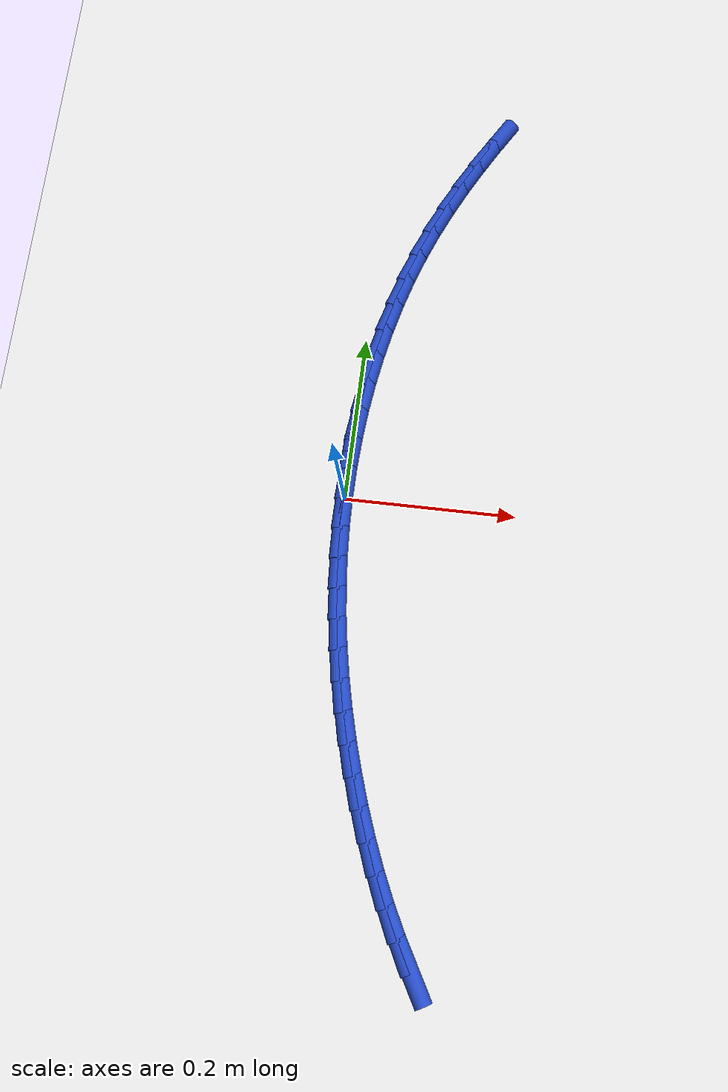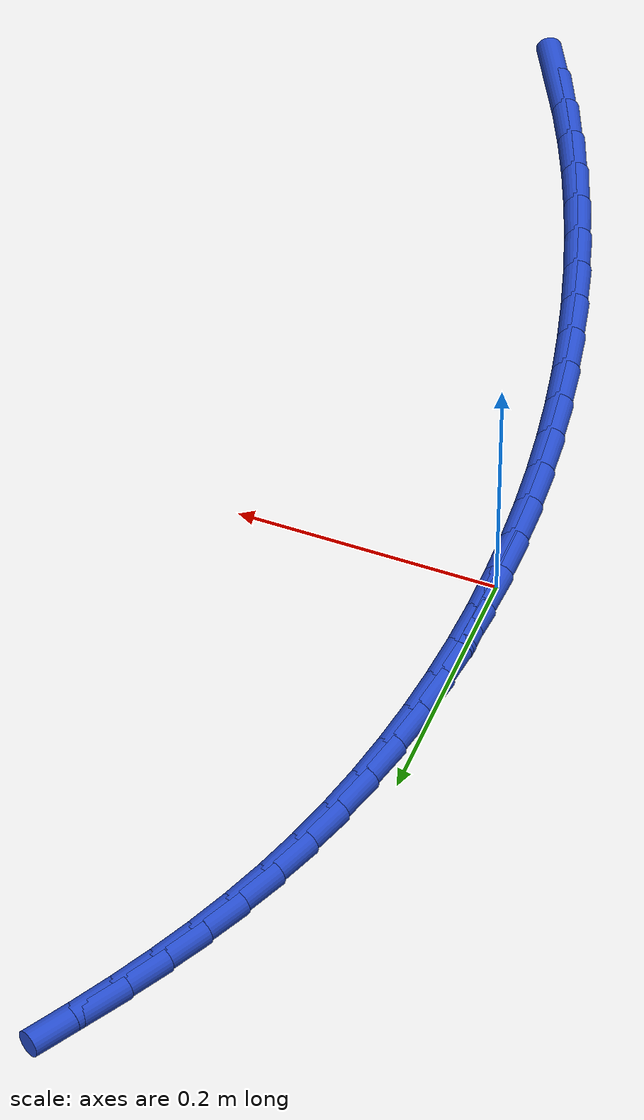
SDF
<sdf version="1.6">
 <world name="default">
  <model name="ground_plane">
   <static>1</static>
   <link name="link">
    <collision name="collision">
     <geometry><plane><normal>0 0 1</normal><size>100 100</size></plane></geometry>
     <surface><friction><ode><mu>100</mu><mu2>50</mu2></ode></friction></surface>
    </collision>
    <visual name="visual">
     <cast_shadows>0</cast_shadows>
     <geometry><plane><normal>0 0 1</normal><size>100 100</size></plane></geometry>
     <material>
      <script><uri>file://media/materials/scripts/gazebo.material</uri><name>Gazebo/WhiteGlow</name></script>
     </material>
    </visual>
   </link>
  </model>
  <model name="line">
   <link name="link_0">
    <pose>8.673617379884035e-19 -6.938893903907228e-18 0.01 0 1.57 1.560804196226512</pose>
    <collision name="collision">
     <geometry><cylinder><radius>0.01</radius><length>0.08</length></cylinder></geometry>
    </collision>
    <visual name="visual">
     <material>
      <script><name>Gazebo/Blue</name><uri>file://media/materials/scripts/gazebo.material</uri></script>
     </material>
     <geometry><cylinder><radius>0.01</radius><length>0.08</length></cylinder></geometry>
    </visual>
   </link>
   <link name="link_1">
    <pose>0.00035642979521674603 0.03566986343876464 0.01 0 1.57 1.5253975953398975</pose>
    <collision name="collision">
     <geometry><cylinder><radius>0.01</radius><length>0.08</length></cylinder></geometry>
    </collision>
    <visual name="visual">
     <material>
      <script><name>Gazebo/Blue</name><uri>file://media/materials/scripts/gazebo.material</uri></script>
     </material>
     <geometry><cylinder><radius>0.01</radius><length>0.08</length></cylinder></geometry>
    </visual>
   </link>
   <link name="link_2">
    <pose>0.0019789209129767306 0.07138399546337049 0.01 0 1.57 1.4893793077935327</pose>
    <collision name="collision">
     <geometry><cylinder><radius>0.01</radius><length>0.08</length></cylinder></geometry>
    </collision>
    <visual name="visual">
     <material>
      <script><name>Gazebo/Blue</name><uri>file://media/materials/scripts/gazebo.material</uri></script>
     </material>
     <geometry><cylinder><radius>0.01</radius><length>0.08</length></cylinder></geometry>
    </visual>
   </link>
   <link name="link_3">
    <pose>0.004889206295829885 0.10705039636222353 0.01 0 1.57 1.4525715119699916</pose>
    <collision name="collision">
     <geometry><cylinder><radius>0.01</radius><length>0.08</length></cylinder></geometry>
    </collision>
    <visual name="visual">
     <material>
      <script><name>Gazebo/Blue</name><uri>file://media/materials/scripts/gazebo.material</uri></script>
     </material>
     <geometry><cylinder><radius>0.01</radius><length>0.08</length></cylinder></geometry>
    </visual>
   </link>
   <link name="link_4">
    <pose>0.00910901888632615 0.14257706642372994 0.01 0 1.57 1.4147974794986888</pose>
    <collision name="collision">
     <geometry><cylinder><radius>0.01</radius><length>0.08</length></cylinder></geometry>
    </collision>
    <visual name="visual">
     <material>
      <script><name>Gazebo/Blue</name><uri>file://media/materials/scripts/gazebo.material</uri></script>
     </material>
     <geometry><cylinder><radius>0.01</radius><length>0.08</length></cylinder></geometry>
    </visual>
   </link>
   <link name="link_5">
    <pose>0.014660091627015443 0.17787200593629557 0.01 0 1.57 1.3758813945967248</pose>
    <collision name="collision">
     <geometry><cylinder><radius>0.01</radius><length>0.08</length></cylinder></geometry>
    </collision>
    <visual name="visual">
     <material>
      <script><name>Gazebo/Blue</name><uri>file://media/materials/scripts/gazebo.material</uri></script>
     </material>
     <geometry><cylinder><radius>0.01</radius><length>0.08</length></cylinder></geometry>
    </visual>
   </link>
   <link name="link_6">
    <pose>0.02156415746044771 0.21284321518832658 0.01 0 1.57 1.3356487792455822</pose>
    <collision name="collision">
     <geometry><cylinder><radius>0.01</radius><length>0.08</length></cylinder></geometry>
    </collision>
    <visual name="visual">
     <material>
      <script><name>Gazebo/Blue</name><uri>file://media/materials/scripts/gazebo.material</uri></script>
     </material>
     <geometry><cylinder><radius>0.01</radius><length>0.08</length></cylinder></geometry>
    </visual>
   </link>
   <link name="link_7">
    <pose>0.02984294932917287 0.24739869446822899 0.01 0 1.57 1.2939276528066</pose>
    <collision name="collision">
     <geometry><cylinder><radius>0.01</radius><length>0.08</length></cylinder></geometry>
    </collision>
    <visual name="visual">
     <material>
      <script><name>Gazebo/Blue</name><uri>file://media/materials/scripts/gazebo.material</uri></script>
     </material>
     <geometry><cylinder><radius>0.01</radius><length>0.08</length></cylinder></geometry>
    </visual>
   </link>
   <link name="link_8">
    <pose>0.03951820017574087 0.2814464440644088 0.01 0 1.57 1.250550577946964</pose>
    <collision name="collision">
     <geometry><cylinder><radius>0.01</radius><length>0.08</length></cylinder></geometry>
    </collision>
    <visual name="visual">
     <material>
      <script><name>Gazebo/Blue</name><uri>file://media/materials/scripts/gazebo.material</uri></script>
     </material>
     <geometry><cylinder><radius>0.01</radius><length>0.08</length></cylinder></geometry>
    </visual>
   </link>
   <link name="link_9">
    <pose>0.05061164294270161 0.3148944642652719 0.01 0 1.57 1.2056868077154406</pose>
    <collision name="collision">
     <geometry><cylinder><radius>0.01</radius><length>0.08</length></cylinder></geometry>
    </collision>
    <visual name="visual">
     <material>
      <script><name>Gazebo/Blue</name><uri>file://media/materials/scripts/gazebo.material</uri></script>
     </material>
     <geometry><cylinder><radius>0.01</radius><length>0.08</length></cylinder></geometry>
    </visual>
   </link>
   <link name="link_10">
    <pose>0.06313663496150317 0.3476611653647751 0.01 0 1.57 1.1626769627157991</pose>
    <collision name="collision">
     <geometry><cylinder><radius>0.01</radius><length>0.08</length></cylinder></geometry>
    </collision>
    <visual name="visual">
     <material>
      <script><name>Gazebo/Blue</name><uri>file://media/materials/scripts/gazebo.material</uri></script>
     </material>
     <geometry><cylinder><radius>0.01</radius><length>0.08</length></cylinder></geometry>
    </visual>
   </link>
   <link name="link_11">
    <pose>0.07702096798013851 0.3797713066967087 0.01 0 1.57 1.1237424071856092</pose>
    <collision name="collision">
     <geometry><cylinder><radius>0.01</radius><length>0.08</length></cylinder></geometry>
    </collision>
    <visual name="visual">
     <material>
      <script><name>Gazebo/Blue</name><uri>file://media/materials/scripts/gazebo.material</uri></script>
     </material>
     <geometry><cylinder><radius>0.01</radius><length>0.08</length></cylinder></geometry>
    </visual>
   </link>
   <link name="link_12">
    <pose>0.09214236167289439 0.4113118819272449 0.01 0 1.57 1.089125896518633</pose>
    <collision name="collision">
     <geometry><cylinder><radius>0.01</radius><length>0.08</length></cylinder></geometry>
    </collision>
    <visual name="visual">
     <material>
      <script><name>Gazebo/Blue</name><uri>file://media/materials/scripts/gazebo.material</uri></script>
     </material>
     <geometry><cylinder><radius>0.01</radius><length>0.08</length></cylinder></geometry>
    </visual>
   </link>
   <link name="link_13">
    <pose>0.1083779041406727 0.4423706697019865 0.01 0 1.57 1.0589559659315158</pose>
    <collision name="collision">
     <geometry><cylinder><radius>0.01</radius><length>0.08</length></cylinder></geometry>
    </collision>
    <visual name="visual">
     <material>
      <script><name>Gazebo/Blue</name><uri>file://media/materials/scripts/gazebo.material</uri></script>
     </material>
     <geometry><cylinder><radius>0.01</radius><length>0.08</length></cylinder></geometry>
    </visual>
   </link>
   <link name="link_14">
    <pose>0.1256046834843754 0.4730354486665372 0.01 0 1.57 1.0332889420093587</pose>
    <collision name="collision">
     <geometry><cylinder><radius>0.01</radius><length>0.08</length></cylinder></geometry>
    </collision>
    <visual name="visual">
     <material>
      <script><name>Gazebo/Blue</name><uri>file://media/materials/scripts/gazebo.material</uri></script>
     </material>
     <geometry><cylinder><radius>0.01</radius><length>0.08</length></cylinder></geometry>
    </visual>
   </link>
   <link name="link_175">
    <pose>0.13695451609697823 -0.5119933351743617 0.01 0 1.57 -1.0609991235440372</pose>
    <collision name="collision">
     <geometry><cylinder><radius>0.01</radius><length>0.08</length></cylinder></geometry>
    </collision>
    <visual name="visual">
     <material>
      <script><name>Gazebo/Blue</name><uri>file://media/materials/scripts/gazebo.material</uri></script>
     </material>
     <geometry><cylinder><radius>0.01</radius><length>0.08</length></cylinder></geometry>
    </visual>
   </link>
   <link name="link_176">
    <pose>0.1195264746472616 -0.48082131708357434 0.01 0 1.57 -1.1045988890465037</pose>
    <collision name="collision">
     <geometry><cylinder><radius>0.01</radius><length>0.08</length></cylinder></geometry>
    </collision>
    <visual name="visual">
     <material>
      <script><name>Gazebo/Blue</name><uri>file://media/materials/scripts/gazebo.material</uri></script>
     </material>
     <geometry><cylinder><radius>0.01</radius><length>0.08</length></cylinder></geometry>
    </visual>
   </link>
   <link name="link_177">
    <pose>0.10338782227650756 -0.44874872283114814 0.01 0 1.57 -1.144870376235784</pose>
    <collision name="collision">
     <geometry><cylinder><radius>0.01</radius><length>0.08</length></cylinder></geometry>
    </collision>
    <visual name="visual">
     <material>
      <script><name>Gazebo/Blue</name><uri>file://media/materials/scripts/gazebo.material</uri></script>
     </material>
     <geometry><cylinder><radius>0.01</radius><length>0.08</length></cylinder></geometry>
    </visual>
   </link>
   <link name="link_178">
    <pose>0.08849801496754604 -0.4159300487746464 0.01 0 1.57 -1.182127067291067</pose>
    <collision name="collision">
     <geometry><cylinder><radius>0.01</radius><length>0.08</length></cylinder></geometry>
    </collision>
    <visual name="visual">
     <material>
      <script><name>Gazebo/Blue</name><uri>file://media/materials/scripts/gazebo.material</uri></script>
     </material>
     <geometry><cylinder><radius>0.01</radius><length>0.08</length></cylinder></geometry>
    </visual>
   </link>
   <link name="link_179">
    <pose>0.07481650870320725 -0.38251979127163255 0.01 0 1.57 -1.216670277575733</pose>
    <collision name="collision">
     <geometry><cylinder><radius>0.01</radius><length>0.08</length></cylinder></geometry>
    </collision>
    <visual name="visual">
     <material>
      <script><name>Gazebo/Blue</name><uri>file://media/materials/scripts/gazebo.material</uri></script>
     </material>
     <geometry><cylinder><radius>0.01</radius><length>0.08</length></cylinder></geometry>
    </visual>
   </link>
   <link name="link_180">
    <pose>0.06230275946632045 -0.348672446679668 0.01 0 1.57 -1.2487972164307566</pose>
    <collision name="collision">
     <geometry><cylinder><radius>0.01</radius><length>0.08</length></cylinder></geometry>
    </collision>
    <visual name="visual">
     <material>
      <script><name>Gazebo/Blue</name><uri>file://media/materials/scripts/gazebo.material</uri></script>
     </material>
     <geometry><cylinder><radius>0.01</radius><length>0.08</length></cylinder></geometry>
    </visual>
   </link>
   <link name="link_181">
    <pose>0.05091646866000696 -0.3145418544789347 0.01 0 1.57 -1.2797125636753368</pose>
    <collision name="collision">
     <geometry><cylinder><radius>0.01</radius><length>0.08</length></cylinder></geometry>
    </collision>
    <visual name="visual">
     <material>
      <script><name>Gazebo/Blue</name><uri>file://media/materials/scripts/gazebo.material</uri></script>
     </material>
     <geometry><cylinder><radius>0.01</radius><length>0.08</length></cylinder></geometry>
    </visual>
   </link>
   <link name="link_182">
    <pose>0.04063679497168314 -0.2802297759375107 0.01 0 1.57 -1.3111210094579895</pose>
    <collision name="collision">
     <geometry><cylinder><radius>0.01</radius><length>0.08</length></cylinder></geometry>
    </collision>
    <visual name="visual">
     <material>
      <script><name>Gazebo/Blue</name><uri>file://media/materials/scripts/gazebo.material</uri></script>
     </material>
     <geometry><cylinder><radius>0.01</radius><length>0.08</length></cylinder></geometry>
    </visual>
   </link>
   <link name="link_183">
    <pose>0.03147614663806432 -0.2457489785536142 0.01 0 1.57 -1.3431521092677192</pose>
    <collision name="collision">
     <geometry><cylinder><radius>0.01</radius><length>0.08</length></cylinder></geometry>
    </collision>
    <visual name="visual">
     <material>
      <script><name>Gazebo/Blue</name><uri>file://media/materials/scripts/gazebo.material</uri></script>
     </material>
     <geometry><cylinder><radius>0.01</radius><length>0.08</length></cylinder></geometry>
    </visual>
   </link>
   <link name="link_184">
    <pose>0.023450186537311544 -0.2111035186453747 0.01 0 1.57 -1.3757667498872592</pose>
    <collision name="collision">
     <geometry><cylinder><radius>0.01</radius><length>0.08</length></cylinder></geometry>
    </collision>
    <visual name="visual">
     <material>
      <script><name>Gazebo/Blue</name><uri>file://media/materials/scripts/gazebo.material</uri></script>
     </material>
     <geometry><cylinder><radius>0.01</radius><length>0.08</length></cylinder></geometry>
    </visual>
   </link>
   <link name="link_185">
    <pose>0.016574577547585848 -0.17629745253092205 0.01 0 1.57 -1.4089195361995004</pose>
    <collision name="collision">
     <geometry><cylinder><radius>0.01</radius><length>0.08</length></cylinder></geometry>
    </collision>
    <visual name="visual">
     <material>
      <script><name>Gazebo/Blue</name><uri>file://media/materials/scripts/gazebo.material</uri></script>
     </material>
     <geometry><cylinder><radius>0.01</radius><length>0.08</length></cylinder></geometry>
    </visual>
   </link>
   <link name="link_186">
    <pose>0.010864982547048384 -0.14133483652838663 0.01 0 1.57 -1.4425589199018691</pose>
    <collision name="collision">
     <geometry><cylinder><radius>0.01</radius><length>0.08</length></cylinder></geometry>
    </collision>
    <visual name="visual">
     <material>
      <script><name>Gazebo/Blue</name><uri>file://media/materials/scripts/gazebo.material</uri></script>
     </material>
     <geometry><cylinder><radius>0.01</radius><length>0.08</length></cylinder></geometry>
    </visual>
   </link>
   <link name="link_187">
    <pose>0.006337064413859948 -0.10621972695589658 0.01 0 1.57 -1.4766274775199628</pose>
    <collision name="collision">
     <geometry><cylinder><radius>0.01</radius><length>0.08</length></cylinder></geometry>
    </collision>
    <visual name="visual">
     <material>
      <script><name>Gazebo/Blue</name><uri>file://media/materials/scripts/gazebo.material</uri></script>
     </material>
     <geometry><cylinder><radius>0.01</radius><length>0.08</length></cylinder></geometry>
    </visual>
   </link>
   <link name="link_188">
    <pose>0.00300648602618171 -0.07095618013158232 0.01 0 1.57 -1.511062343752566</pose>
    <collision name="collision">
     <geometry><cylinder><radius>0.01</radius><length>0.08</length></cylinder></geometry>
    </collision>
    <visual name="visual">
     <material>
      <script><name>Gazebo/Blue</name><uri>file://media/materials/scripts/gazebo.material</uri></script>
     </material>
     <geometry><cylinder><radius>0.01</radius><length>0.08</length></cylinder></geometry>
    </visual>
   </link>
   <link name="link_189">
    <pose>0.0008889102621747122 -0.03554825237357357 0.01 0 1.57 -1.545795799408445</pose>
    <collision name="collision">
     <geometry><cylinder><radius>0.01</radius><length>0.08</length></cylinder></geometry>
    </collision>
    <visual name="visual">
     <material>
      <script><name>Gazebo/Blue</name><uri>file://media/materials/scripts/gazebo.material</uri></script>
     </material>
     <geometry><cylinder><radius>0.01</radius><length>0.08</length></cylinder></geometry>
    </visual>
   </link>
   <link name="link_190">
    <pose>-7.806255641895632e-18 4.85722573273506e-17 0.01 0 1.57 1.5608366479444102</pose>
    <collision name="collision">
     <geometry><cylinder><radius>0.01</radius><length>0.08</length></cylinder></geometry>
    </collision>
    <visual name="visual">
     <material>
      <script><name>Gazebo/Blue</name><uri>file://media/materials/scripts/gazebo.material</uri></script>
     </material>
     <geometry><cylinder><radius>0.01</radius><length>0.08</length></cylinder></geometry>
    </visual>
   </link>
   <link name="link_191">
    <pose>0.00035541811781859313 0.03568452067100884 0.01 0 1.57 1.5608366479444105</pose>
    <collision name="collision">
     <geometry><cylinder><radius>0.01</radius><length>0.08</length></cylinder></geometry>
    </collision>
    <visual name="visual">
     <material>
      <script><name>Gazebo/Blue</name><uri>file://media/materials/scripts/gazebo.material</uri></script>
     </material>
     <geometry><cylinder><radius>0.01</radius><length>0.08</length></cylinder></geometry>
    </visual>
   </link>
  </model>
 </world>
</sdf>
